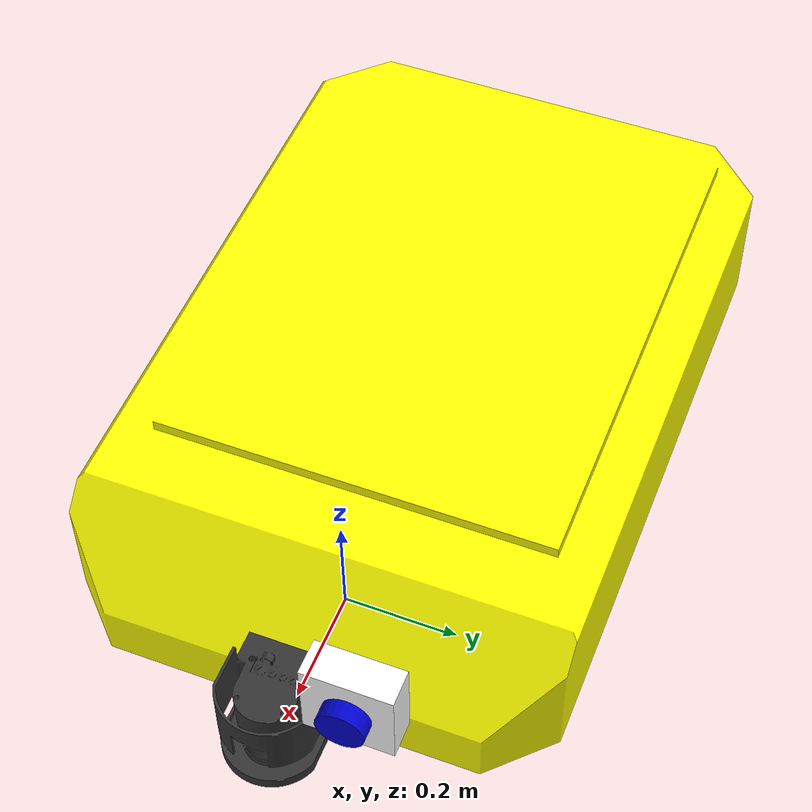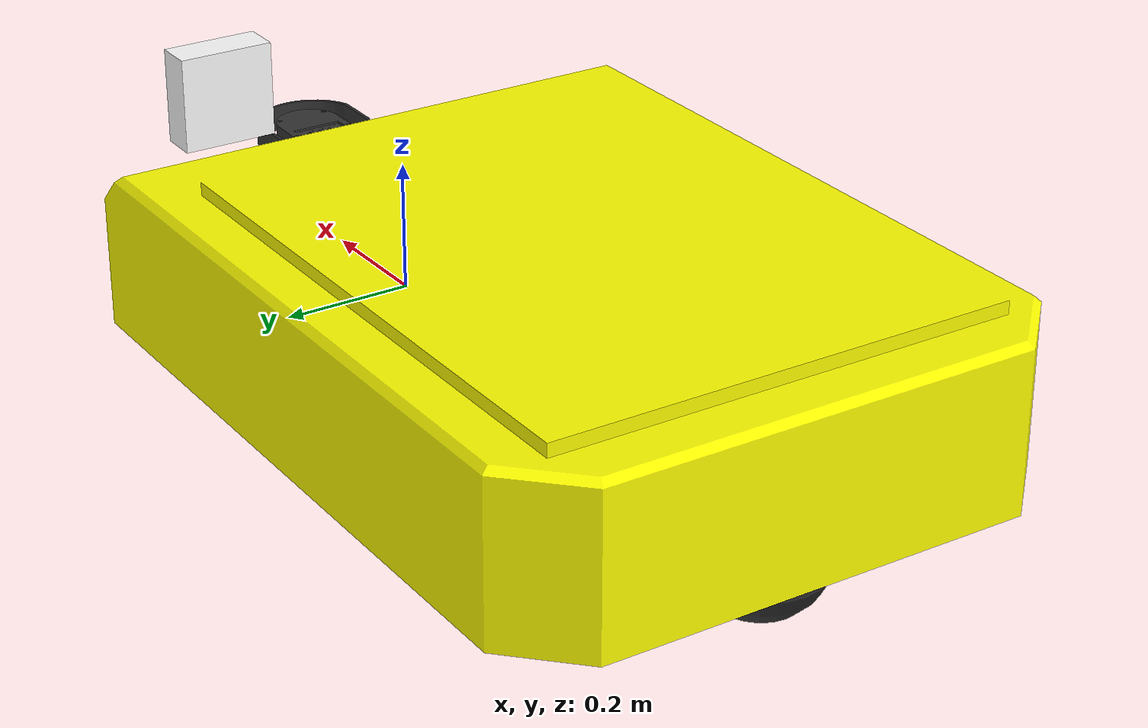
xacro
<?xml version="1.0"?>
<robot name="bot"
    xmlns:xacro="http://www.ros.org/wiki/xacro">
    <!-- INCLUDES -->
    <xacro:include filename="$(find simulation)/models/urdf/robot1_parameters.xacro" />
    <!-- BASE LINK -->
    <link name="base_link">
        <inertial>
            <origin rpy="0 0 0" xyz="-0.4348827 -0 0.130504"/>
            <mass value="${base_mass}"/>
            <inertia ixx="0.01622966" ixy = "0" ixz = "0.00032045" iyy="0.030945721" iyz = "0" izz="0.0442044364" />
        </inertial>
        <collision name="base_front_collision">
            <origin rpy="0 0 0" xyz="0 0 0"/>
            <geometry>
                <mesh filename="package://simulation/models/mash/vozicek1.0.STL" />
            </geometry>
        </collision>
        <visual>
            <origin rpy="0 0 0" xyz="0 0 0"/>
            <geometry>
                <mesh filename="package://simulation/models/mash/vozicek1.0.STL" />
            </geometry>
            <material name="yellow"/>
        </visual>
    </link>

    <joint name="caster_wheel_joint" type="fixed">
        <parent link="base_link"/>
        <child link="caster_wheel_link"/>
        <origin xyz="-0.9 0 0" rpy="0 0 0"/>
    </joint>

    <link name="caster_wheel_link">
        <visual>
            <geometry>
                <sphere radius="0.1" />
            </geometry>
            <material name="gray"/>
        </visual>
        <collision>
            <geometry>
                <sphere radius="0.1" />
            </geometry>

        </collision>

    </link>

    <joint name="lidar_joint" type="fixed">
        <parent link="base_link"/>
        <child link="lidar_link"/>
        <origin xyz="0.3 0 0.05" rpy="0 0 0"/>
    </joint>

    <link name="lidar_link">
        <visual>
            <geometry>
                <mesh filename="package://simulation/models/mash/sickS300mini.STL" />
            </geometry>
            <material name="gray"/>
        </visual>
        <collision>
            <geometry>
                <mesh filename="package://simulation/models/mash/sickS300mini.STL" />
            </geometry>

        </collision>

    </link>

    <joint name="camera_joint" type="fixed">
        <origin xyz="0.3 0.15 0.25" rpy="0 0 0"/>
        <parent link="base_link"/>
        <child link="camera_link"/>
    </joint>

    <link name="camera_link">
        <visual>
            <origin xyz="0 0 0" rpy="0 0 0"/>
            <geometry>
                <box size="0.06 0.15 0.15" />
            </geometry>
            <material name="white" />
        </visual>
        <visual>
            <origin xyz="0.03 0 0" rpy="0 ${pi/2} 0"/>
            <geometry>
                <cylinder length="0.06" radius="0.04" />
            </geometry>
            <material name="blue" />
        </visual>
        <collision>
            <origin xyz="0.0 0 0" rpy="0 0 0"/>
            <geometry>
                <box size="0.12 0.15 0.15" />
            </geometry>
        </collision>

    </link>

    <joint name="camera_optical_joint" type="fixed">
        <origin xyz="0.1 0 0" rpy="-1.571 0 -1.571" />
        <parent link="camera_link" />
        <child link="camera_link_optical" />
    </joint>

    <link name="camera_link_optical"></link>

        <!-- LEFT WHEEL JOINT -->
    <joint name="left_wheel_joint" type="continuous">
        <origin rpy="0 0 0" xyz="0 0.275 0"/>
        <child link="left_wheel_link"/>
        <parent link="base_link"/>
        <axis rpy="0 0 0" xyz="0 1 0"/>
        <dynamics damping="${motor_damping}" friction="${motor_friction}"/>
    </joint>
    <!-- LEFT WHEEL LINK -->
    <link name="left_wheel_link">
        <inertial>
            <mass value="${wheel_mass}"/>
            <origin rpy="0 0 0" xyz="0 0.275 0"/>
            <inertia ixx="0.00001546" ixy = "0.0000006" ixz = "0.000001546" iyy="0.000019889" iyz = "0" izz="0.00001102" />
        </inertial>
        <collision>
            <origin rpy="0 0 0" xyz="0 0 0"/>
            <geometry>
                <mesh filename="package://simulation/models/mash/kolo1.0.STL" />
            </geometry>

        </collision>
        <visual>
            <origin rpy="0 0 0" xyz="0 0 0"/>
            <geometry>
                <mesh filename="package://simulation/models/mash/kolo1.0.STL" />
            </geometry>
            <material name="gray"/>
        </visual>
    </link>

            <!-- RIGHT WHEEL JOINT -->
    <joint name="right_wheel_joint" type="continuous">
        <origin rpy="0 0 0" xyz="0 -0.275 0"/>
        <child link="right_wheel_link"/>
        <parent link="base_link"/>
        <axis rpy="0 0 0" xyz="0 1 0"/>
        <dynamics damping="${motor_damping}" friction="${motor_friction}"/>
    </joint>
    <!-- RIGHT WHEEL LINK -->
    <link name="right_wheel_link">
        <inertial>
            <mass value="${wheel_mass}"/>
            <origin rpy="0 0 0" xyz="0 -0.275 0"/>
            <inertia ixx="0.00001546" ixy = "0.0000006" ixz = "0.000001546" iyy="0.000019889" iyz = "0" izz="0.00001102" />
        </inertial>
        <collision>
            <origin rpy="0 0 0" xyz="0 0 0"/>
            <geometry>
                <mesh filename="package://simulation/models/mash/kolo1.0.STL" />
            </geometry>
        </collision>
        <visual>
            <origin rpy="0 0 0" xyz="0 0 0"/>
            <geometry>
                <mesh filename="package://simulation/models/mash/kolo1.0.STL" />
            </geometry>
            <material name="gray"/>
        </visual>
    </link>

    <!-- GAZEBO CONTROL -->
    <gazebo>
        <plugin name="differential_drive_controller" filename="libgazebo_ros_diff_drive.so">
            <!-- wheel info-->
            <leftJoint>left_wheel_joint</leftJoint>
            <rightJoint>right_wheel_joint</rightJoint>
            <wheelSeparation>0.550</wheelSeparation>
            <wheelDiameter>0.120</wheelDiameter>

            <wheelTorque>50</wheelTorque>
            <wheelAcceleration>10</wheelAcceleration>

            <commandTopic>cmd_vel</commandTopic>
            <odometryFrame>odom</odometryFrame>
            <odometryTopic>odom</odometryTopic>
            <robotBaseFrame>base_link</robotBaseFrame>

            <publishOdom>true</publishOdom>
            <publishOdomTF>true</publishOdomTF>
            <odometrySource>world</odometrySource>
        </plugin>
    </gazebo>

    <gazebo reference="base_link">
        <material>Gazebo/Yellow</material>
    </gazebo>
    <gazebo reference="left_wheel_link">
        <material>Gazebo/Grey</material>
    </gazebo>
    <gazebo reference="right_wheel_link">
        <material>Gazebo/Grey</material>
    </gazebo>
    <gazebo reference="caster_wheel_link">
        <material>Gazebo/Black</material>
        <mu1 value="0.00001"/>
        <mu2 value="0.00001"/>
    </gazebo>
    <gazebo reference="lidar_link">
        <material>Gazebo/Black</material>
        <sensor name="laser" type="ray">
            <visualize>true</visualize>
            <update_rate>10</update_rate>
            <ray>
                <scan>
                    <horizontal>
                        <samples>180</samples>
                        <resolution>2</resolution>
                        <min_angle>-1.57</min_angle>
                        <max_angle>1.57</max_angle>
                    </horizontal>
                </scan>
                <range>
                    <min>0.2</min>
                    <max>10</max>
                </range>
            </ray>
            <plugin name="laser_controller" filename="libgazebo_ros_laser.so">
            <topicName>scan</topicName>
            <frameName>lidar_link</frameName>
            </plugin>
        </sensor>
    </gazebo>

    <gazebo reference="camera_link">
        <sensor type="depth" name="my_camera">
            <update_rate>20</update_rate>
            <visualize>true</visualize>
            <camera name="cam">
                <horizontal_fov>1.3962634</horizontal_fov>
                <image>
                    <width>640</width>
                    <height>480</height>
                    <format>R8B8G8</format>
                </image>
                <clip>
                    <near>0.05</near>
                    <far>50</far>
                </clip>
            </camera>
            <plugin name="camera_controller" filename="libgazebo_ros_camera.so">
                <frame_name>camera_link_optical</frame_name>
                <imageTopicName>/camera/rgb/image_raw</imageTopicName>
            </plugin>
        </sensor>
    </gazebo>

</robot>

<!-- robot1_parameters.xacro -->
<robot name="bot"
    xmlns:xacro="http://www.ros.org/wiki/xacro">
    <!-- CYLINDER INERTIA -->
    <xacro:macro name="cylinder_inertia" params="mass r l">
        <inertia ixx="${mass*(3*r*r+l*l)/12}" ixy = "0" ixz = "0" iyy="${mass*(3*r*r+l*l)/12}" iyz = "0" izz="${mass*(r*r)/2}" />
    </xacro:macro>
    <!-- BOX INERTIA -->
    <xacro:macro name="box_inertia" params="mass x y z">
        <inertia ixx="${mass*(y*y+z*z)/12}" ixy = "0" ixz = "0" iyy="${mass*(x*x+z*z)/12}" iyz = "0" izz="${mass*(x*x+y*y)/12}" />
    </xacro:macro>
    <!-- BASE INERTIA -->
    <xacro:property name="base_mass" value="1" />
    <xacro:property name="base_size_x" value="1.2" />
    <xacro:property name="base_size_y" value="0.55" />
    <xacro:property name="base_size_z" value="0.15" />
    <!-- CASTER COLLISION -->
    <xacro:property name="caster_kp" value="10000000" />
    <xacro:property name="caster_kd" value="1.0" />
    <xacro:property name="caster_mu" value="0.0" />
    <xacro:property name="caster_mu2" value="0.0" />
    <xacro:property name="caster_slip1" value="1.0" />
    <xacro:property name="caster_slip2" value="1.0" />
    <!-- WHEEL INERTIA -->
    <xacro:property name="wheel_mass" value="0.05" />
    <xacro:property name="wheel_radius" value="0.2" />
    <xacro:property name="wheel_width" value="0.1" />
    <!-- WHEEL COLLISION -->
    <xacro:property name="wheel_kp" value="10000000" />
    <xacro:property name="wheel_kd" value="1.0" />
    <xacro:property name="wheel_mu" value="1.0" />
    <xacro:property name="wheel_mu2" value="1.0" />
    <xacro:property name="wheel_slip1" value="0.0" />
    <xacro:property name="wheel_slip2" value="0.0" />
    <!-- WHEEL JOINT -->
    <xacro:property name="motor_damping" value="0.000" />
    <xacro:property name="motor_friction" value="0.00000" />

    <material name="gray">
        <color rgba="0.2 0.2 0.2 1"/>
    </material>

    <material name="yellow">
        <color rgba="1 1 0 1"/>
    </material>

    <material name="green">
        <color rgba="0.2 0.8 0.2 1"/>
    </material>

    <material name="black">
        <color rgba="0.0 0.0 0.0 1.0"/>
    </material>

    <material name="blue">
        <color rgba="0.0 0.0 0.8 1.0"/>
    </material>

    <material name="darkgray">
        <color rgba="0.3 0.3 0.3 1.0"/>
    </material>

    <material name="red">
        <color rgba="0.8 0.0 0.0 1.0"/>
    </material>

    <material name="white">
        <color rgba="1.0 1.0 1.0 1.0"/>
    </material>

</robot>
